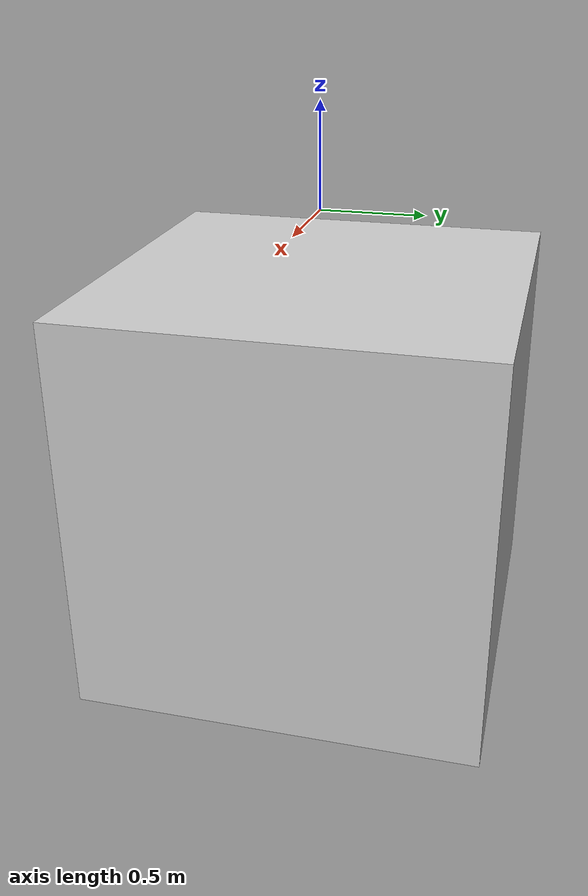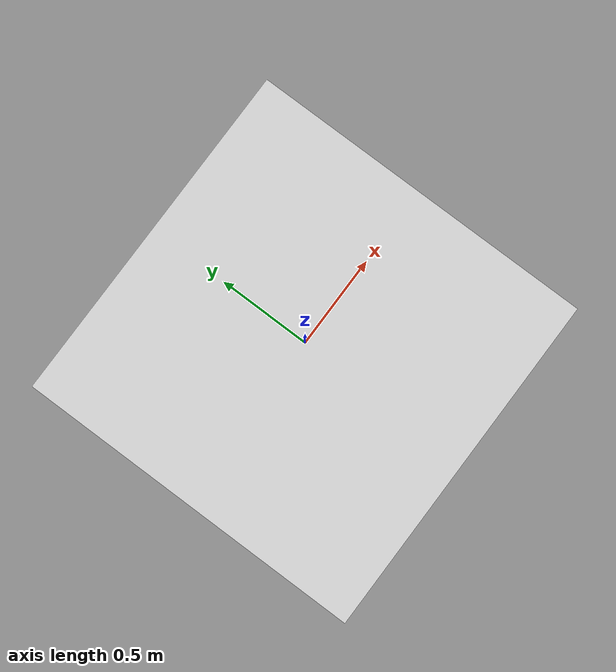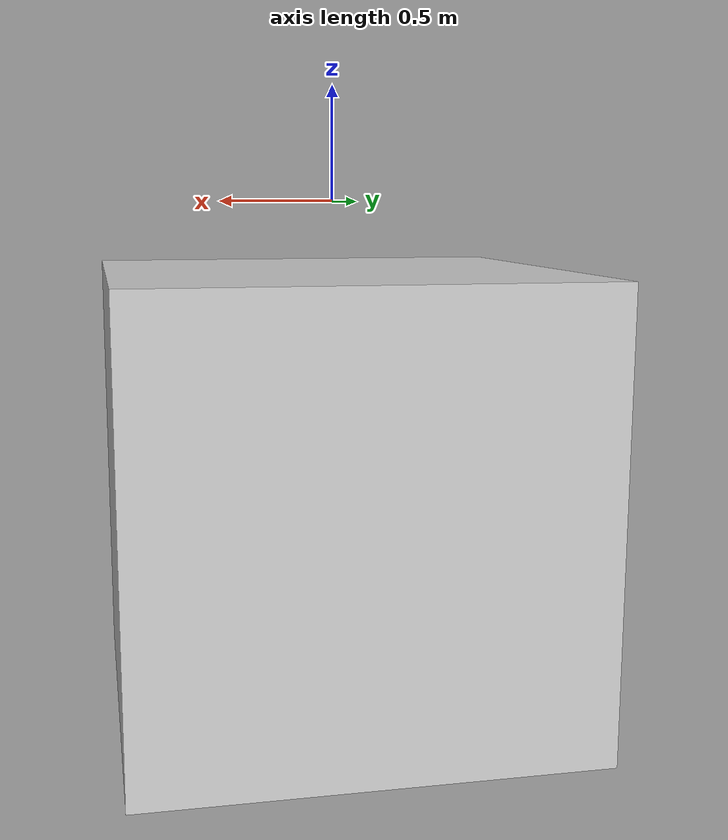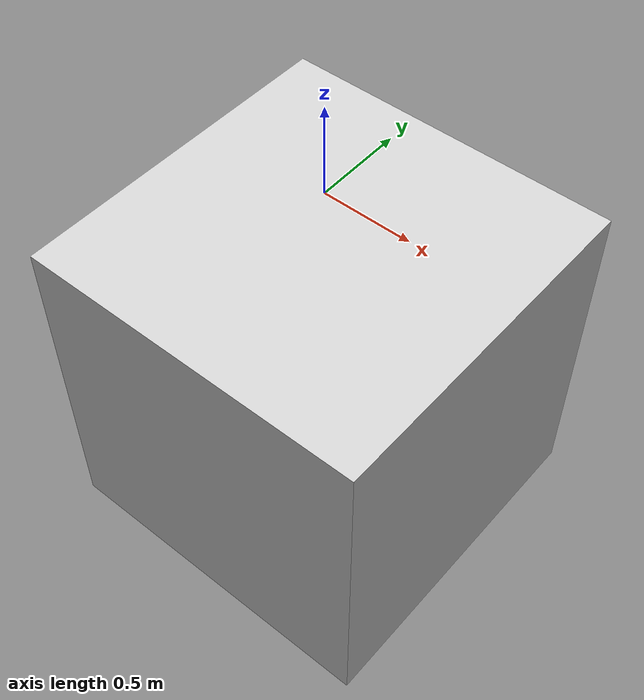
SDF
<?xml version="1.0" ?>
<sdf version="1.6">
  <model name="baylands">
    <pose>0 0 -1.3  0 0 0</pose>
    <static>true</static>

    <link name="body">
      <visual name="visual">
        <geometry>
          <mesh><uri>model://baylands/meshes/baylands_03.dae</uri></mesh>
        </geometry>
      </visual>
      <collision name="collision">
        <geometry>
          <mesh><uri>model://baylands/meshes/baylands_03.dae</uri></mesh>
        </geometry>
      </collision>
    </link>
  </model>
</sdf>
